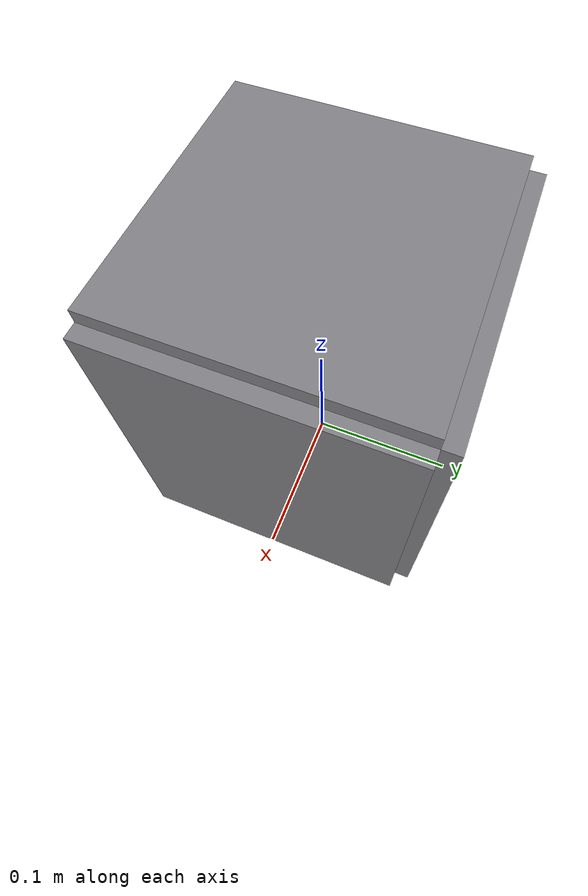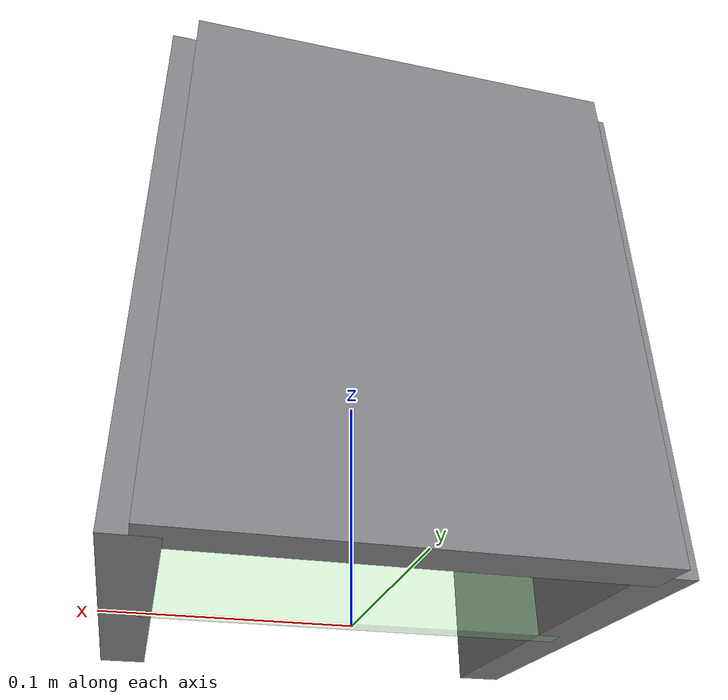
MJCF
<?xml version="1.0" encoding="utf-8"?>
<mujoco model="fingerprint_fuming_chamber">
  <compiler angle="radian" autolimits="true"/>
  <default>
    <default class="body"><geom contype="1" conaffinity="1"/></default>
  </default>
  <worldbody>
    <body name="base">
      <geom type="box" size="0.09 0.01 0.11" pos="0 0.09 0.11" rgba="0.5 0.5 0.52 1" class="body"/>
      <geom type="box" size="0.01 0.09 0.11" pos="-0.09 0 0.11" rgba="0.5 0.5 0.52 1" class="body"/>
      <geom type="box" size="0.01 0.09 0.11" pos="0.09 0 0.11" rgba="0.5 0.5 0.52 1" class="body"/>
      <geom type="box" size="0.09 0.09 0.01" pos="0 0 0.22" rgba="0.5 0.5 0.52 1" class="body"/>
      <body name="door" pos="-0.09 0.0 0.11">
        <joint name="door_joint" type="hinge" axis="0 0 1" range="0 1.8" damping="0.6" frictionloss="0.3"/>
  <geom type="box" size="0.09 0.005 0.11" pos="0.09 0 0" rgba="0.6 0.9 0.6 0.35" class="body"/>
      </body>
    </body>
  </worldbody>
</mujoco>
